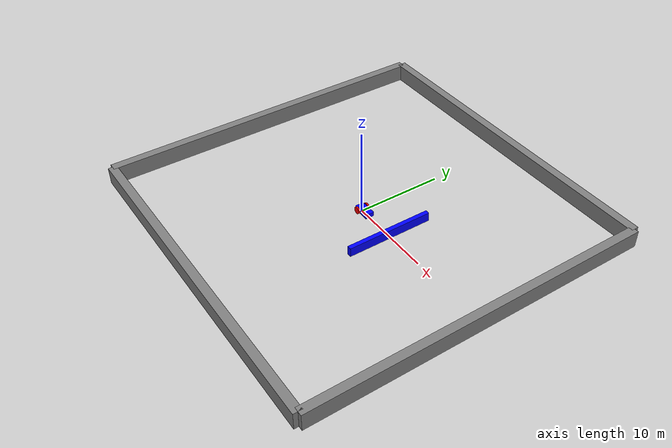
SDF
<sdf version="1.6">
    <world name="car_world">
        <physics name="1ms" type="ode">
            <max_step_size>0.001</max_step_size>
            <real_time_factor>1.0</real_time_factor>
        </physics>
        <plugin filename="gz-sim-physics-system" name="gz::sim::systems::Physics"></plugin>
        <plugin filename="gz-sim-user-commands-system" name="gz::sim::systems::UserCommands"></plugin>
        <plugin filename="gz-sim-scene-broadcaster-system" name="gz::sim::systems::SceneBroadcaster"></plugin>
        <plugin filename="gz-sim-imu-system" name="gz::sim::systems::Imu"></plugin>
        <plugin filename="gz-sim-contact-system" name="gz::sim::systems::Contact"></plugin>
        <plugin filename="gz-sim-sensors-system" name="gz::sim::systems::Sensors">
            <render_engine>ogre2</render_engine>
        </plugin>

        <light type="directional" name="sun">
            <cast_shadows>true</cast_shadows>
            <pose>0 0 10 0 0 0</pose>
            <diffuse>0.8 0.8 0.8 1</diffuse>
            <specular>0.2 0.2 0.2 1</specular>
            <attenuation>
                <range>1000</range>
                <constant>0.9</constant>
                <linear>0.01</linear>
                <quadratic>0.001</quadratic>
            </attenuation>
            <direction>-0.5 0.1 -0.9</direction>
        </light>

        <model name="Escenario">
            <static>true</static>
            <link name="link">
                <collision name="collision">
                    <geometry>
                        <plane>
                            <normal>0 0 1</normal>
                        </plane>
                    </geometry>
                </collision>
                <visual name="visual">
                    <geometry>
                        <plane>
                            <normal>0 0 1</normal>
                            <size>40 40</size>
                        </plane>
                    </geometry>
                    <material>
                        <ambient>0.8 0.8 0.8 1</ambient>
                        <diffuse>0.8 0.8 0.8 1</diffuse>
                        <specular>0.8 0.8 0.8 1</specular>
                    </material>
                </visual>
            </link>
            <link name="wall_north">
                <pose>0 20 1 0 0 0</pose>
                <collision name="collision">
                    <geometry>
                        <box>
                            <size>40 1 2</size>
                        </box>
                    </geometry>
                </collision>
                <visual name="visual">
                    <geometry>
                        <box>
                            <size>40 1 2</size>
                        </box>
                    </geometry>
                    <material>
                        <ambient>0.5 0.5 0.5 1</ambient>
                        <diffuse>0.5 0.5 0.5 1</diffuse>
                        <specular>0.5 0.5 0.5 1</specular>
                    </material>
                </visual>
            </link>
            <link name="wall_south">
                <pose>0 -20 1 0 0 0</pose>
                <collision name="collision">
                    <geometry>
                        <box>
                            <size>40 1 2</size>
                        </box>
                    </geometry>
                </collision>
                <visual name="visual">
                    <geometry>
                        <box>
                            <size>40 1 2</size>
                        </box>
                    </geometry>
                    <material>
                        <ambient>0.5 0.5 0.5 1</ambient>
                        <diffuse>0.5 0.5 0.5 1</diffuse>
                        <specular>0.5 0.5 0.5 1</specular>
                    </material>
                </visual>
            </link>
            <link name="wall_east">
                <pose>20 0 1 0 0 0</pose>
                <collision name="collision">
                    <geometry>
                        <box>
                            <size>1 40 2</size>
                        </box>
                    </geometry>
                </collision>
                <visual name="visual">
                    <geometry>
                        <box>
                            <size>1 40 2</size>
                        </box>
                    </geometry>
                    <material>
                        <ambient>0.5 0.5 0.5 1</ambient>
                        <diffuse>0.5 0.5 0.5 1</diffuse>
                        <specular>0.5 0.5 0.5 1</specular>
                    </material>
                </visual>
            </link>
            <link name="wall_west">
                <pose>-20 0 1 0 0 0</pose>
                <collision name="collision">
                    <geometry>
                        <box>
                            <size>1 40 2</size>
                        </box>
                    </geometry>
                </collision>
                <visual name="visual">
                    <geometry>
                        <box>
                            <size>1 40 2</size>
                        </box>
                    </geometry>
                    <material>
                        <ambient>0.5 0.5 0.5 1</ambient>
                        <diffuse>0.5 0.5 0.5 1</diffuse>
                        <specular>0.5 0.5 0.5 1</specular>
                    </material>
                </visual>
            </link>
        </model>

        <model name='vehicle_blue' canonical_link='chassis'>
            <pose relative_to='world'>0 0 0 0 0 0</pose>
            <frame name="lidar_frame" attached_to='chassis'>
                <pose>0.8 0 0.5 0 0 0</pose>
            </frame>
            <link name='chassis'>
                <pose relative_to='__model__'>0.5 0 0.4 0 0 0</pose>
                <inertial>
                    <mass>1.14395</mass>
                    <inertia>
                        <ixx>0.095329</ixx>
                        <ixy>0</ixy>
                        <ixz>0</ixz>
                        <iyy>0.381317</iyy>
                        <iyz>0</iyz>
                        <izz>0.476646</izz>
                    </inertia>
                </inertial>
                <visual name='visual'>
                    <geometry>
                        <box>
                            <size>2.0 1.0 0.5</size>
                        </box>
                    </geometry>
                    <material>
                        <ambient>0.0 0.0 1.0 1</ambient>
                        <diffuse>0.0 0.0 1.0 1</diffuse>
                        <specular>0.0 0.0 1.0 1</specular>
                    </material>
                </visual>
                <collision name='collision'>
                    <geometry>
                        <box>
                            <size>2.0 1.0 0.5</size>
                        </box>
                    </geometry>
                </collision>
                <sensor name="imu_sensor" type="imu">
                    <always_on>1</always_on>
                    <update_rate>1</update_rate>
                    <visualize>true</visualize>
                    <topic>imu</topic>
                </sensor>
                <sensor name='gpu_lidar' type='gpu_lidar'>
                    <pose relative_to='lidar_frame'>0 0 0 0 0 0</pose>
                    <topic>lidar</topic>
                    <update_rate>10</update_rate>
                    <ray>
                        <scan>
                            <horizontal>
                                <samples>640</samples>
                                <resolution>1</resolution>
                                <min_angle>-1.396263</min_angle>
                                <max_angle>1.396263</max_angle>
                            </horizontal>
                            <vertical>
                                <samples>1</samples>
                                <resolution>0.01</resolution>
                                <min_angle>0</min_angle>
                                <max_angle>0</max_angle>
                            </vertical>
                        </scan>
                        <range>
                            <min>0.08</min>
                            <max>10.0</max>
                            <resolution>0.01</resolution>
                        </range>
                    </ray>
                    <always_on>1</always_on>
                    <visualize>true</visualize>
                </sensor>
            </link>
            <link name='left_wheel'>
                <pose relative_to="chassis">-0.5 0.6 0 -1.5707 0 0</pose>
                <inertial>
                    <mass>1</mass>
                    <inertia>
                        <ixx>0.043333</ixx>
                        <ixy>0</ixy>
                        <ixz>0</ixz>
                        <iyy>0.043333</iyy>
                        <iyz>0</iyz>
                        <izz>0.08</izz>
                    </inertia>
                </inertial>
                <visual name='visual'>
                    <geometry>
                        <cylinder>
                            <radius>0.4</radius>
                            <length>0.2</length>
                        </cylinder>
                    </geometry>
                    <material>
                        <ambient>1.0 0.0 0.0 1</ambient>
                        <diffuse>1.0 0.0 0.0 1</diffuse>
                        <specular>1.0 0.0 0.0 1</specular>
                    </material>
                </visual>
                <collision name='collision'>
                    <geometry>
                        <cylinder>
                            <radius>0.4</radius>
                            <length>0.2</length>
                        </cylinder>
                    </geometry>
                </collision>
            </link>
            <link name='right_wheel'>
                <pose relative_to="chassis">-0.5 -0.6 0 -1.5707 0 0</pose>
                <inertial>
                    <mass>1</mass>
                    <inertia>
                        <ixx>0.043333</ixx>
                        <ixy>0</ixy>
                        <ixz>0</ixz>
                        <iyy>0.043333</iyy>
                        <iyz>0</iyz>
                        <izz>0.08</izz>
                    </inertia>
                </inertial>
                <visual name='visual'>
                    <geometry>
                        <cylinder>
                            <radius>0.4</radius>
                            <length>0.2</length>
                        </cylinder>
                    </geometry>
                    <material>
                        <ambient>1.0 0.0 0.0 1</ambient>
                        <diffuse>1.0 0.0 0.0 1</diffuse>
                        <specular>1.0 0.0 0.0 1</specular>
                    </material>
                </visual>
                <collision name='collision'>
                    <geometry>
                        <cylinder>
                            <radius>0.4</radius>
                            <length>0.2</length>
                        </cylinder>
                    </geometry>
                </collision>
            </link>
            <frame name="caster_frame" attached_to='chassis'>
                <pose>0.8 0 -0.2 0 0 0</pose>
            </frame>
            <link name='caster'>
                <pose relative_to='caster_frame'/>
                <inertial>
                    <mass>1</mass>
                    <inertia>
                        <ixx>0.016</ixx>
                        <ixy>0</ixy>
                        <ixz>0</ixz>
                        <iyy>0.016</iyy>
                        <iyz>0</iyz>
                        <izz>0.016</izz>
                    </inertia>
                </inertial>
                <visual name='visual'>
                    <geometry>
                        <sphere>
                            <radius>0.2</radius>
                        </sphere>
                    </geometry>
                    <material>
                        <ambient>0.0 1 0.0 1</ambient>
                        <diffuse>0.0 1 0.0 1</diffuse>
                        <specular>0.0 1 0.0 1</specular>
                    </material>
                </visual>
                <collision name='collision'>
                    <geometry>
                        <sphere>
                            <radius>0.2</radius>
                        </sphere>
                    </geometry>
                </collision>
            </link>
            <joint name='left_wheel_joint' type='revolute'>
                <pose relative_to='left_wheel'/>
                <parent>chassis</parent>
                <child>left_wheel</child>
                <axis>
                    <xyz expressed_in='__model__'>0 1 0</xyz>
                    <limit>
                        <lower>-1.79769e+308</lower>
                        <upper>1.79769e+308</upper>
                    </limit>
                </axis>
            </joint>
            <joint name='right_wheel_joint' type='revolute'>
                <pose relative_to='right_wheel'/>
                <parent>chassis</parent>
                <child>right_wheel</child>
                <axis>
                    <xyz expressed_in='__model__'>0 1 0</xyz>
                    <limit>
                        <lower>-1.79769e+308</lower>
                        <upper>1.79769e+308</upper>
                    </limit>
                </axis>
            </joint>
            <joint name='caster_wheel' type='ball'>
                <parent>chassis</parent>
                <child>caster</child>
            </joint>

            <plugin filename="gz-sim-diff-drive-system" name="gz::sim::systems::DiffDrive">
                <left_joint>left_wheel_joint</left_joint>
                <right_joint>right_wheel_joint</right_joint>
                <wheel_separation>1.2</wheel_separation>
                <wheel_radius>0.4</wheel_radius>
                <odom_publish_frequency>1</odom_publish_frequency>
                <topic>cmd_vel</topic>
            </plugin>

            <!-- Movimiento adelante -->
            <plugin filename="gz-sim-triggered-publisher-system" name="gz::sim::systems::TriggeredPublisher">
                <input type="gz.msgs.Int32" topic="/keyboard/keypress">
                    <match field="data">16777235</match>
                </input>
                <output type="gz.msgs.Twist" topic="/cmd_vel">
                    linear: {x: 0.5}, angular: {z: 0.0}
                </output>
            </plugin>

            <!-- Movimiento atras -->
            <plugin filename="gz-sim-triggered-publisher-system" name="gz::sim::systems::TriggeredPublisher">
                <input type="gz.msgs.Int32" topic="/keyboard/keypress">
                    <match field="data">16777237</match>
                </input>
                <output type="gz.msgs.Twist" topic="/cmd_vel">
                    linear: {x: -0.5}, angular: {z: 0.0}
                </output>
            </plugin>

            <!-- Girar a la izquierda -->
            <plugin filename="gz-sim-triggered-publisher-system" name="gz::sim::systems::TriggeredPublisher">
                <input type="gz.msgs.Int32" topic="/keyboard/keypress">
                    <match field="data">16777234</match>
                </input>
                <output type="gz.msgs.Twist" topic="/cmd_vel">
                    linear: {x: 0.0}, angular: {z: 0.8}
                </output>
            </plugin>

            <!-- Girar a la derecha -->
            <plugin filename="gz-sim-triggered-publisher-system" name="gz::sim::systems::TriggeredPublisher">
                <input type="gz.msgs.Int32" topic="/keyboard/keypress">
                    <match field="data">16777236</match>
                </input>
                <output type="gz.msgs.Twist" topic="/cmd_vel">
                    linear: {x: 0.0}, angular: {z: -0.8}
                </output>
            </plugin>
        </model>

        <model name='wall'>
            <pose>5 0 0 0 0 0</pose><!--pose relative to the world-->
            <link name='box'>
                <visual name='visual'>
                    <geometry>
                        <box>
                            <size>0.5 10.0 2.0</size>
                        </box>
                    </geometry>
                    <!--let's add color to our link-->
                    <material>
                        <ambient>0.0 0.0 1.0 1</ambient>
                        <diffuse>0.0 0.0 1.0 1</diffuse>
                        <specular>0.0 0.0 1.0 1</specular>
                    </material>
                </visual>
                <collision name='collision'>
                    <geometry>
                        <box>
                            <size>0.5 10.0 2.0</size>
                        </box>
                    </geometry>
                </collision>
                <sensor name='sensor_contact' type='contact'>
                    <contact>
                        <collision>collision</collision>
                    </contact>
                </sensor>
            </link>
            <plugin filename="gz-sim-touchplugin-system" name="gz::sim::systems::TouchPlugin">
                <target>vehicle_blue</target>
                <namespace>wall</namespace>
                <time>0.001</time>
                <enabled>true</enabled>
            </plugin>
        </model>

        <plugin filename="gz-sim-triggered-publisher-system" name="gz::sim::systems::TriggeredPublisher">
            <input type="gz.msgs.Boolean" topic="/wall/touched">
                <match>data: true</match>
            </input>
            <output type="gz.msgs.Twist" topic="/cmd_vel">
                linear: {x: 0.0}, angular: {z: 0.0}
            </output>
        </plugin>
    </world>
</sdf>
